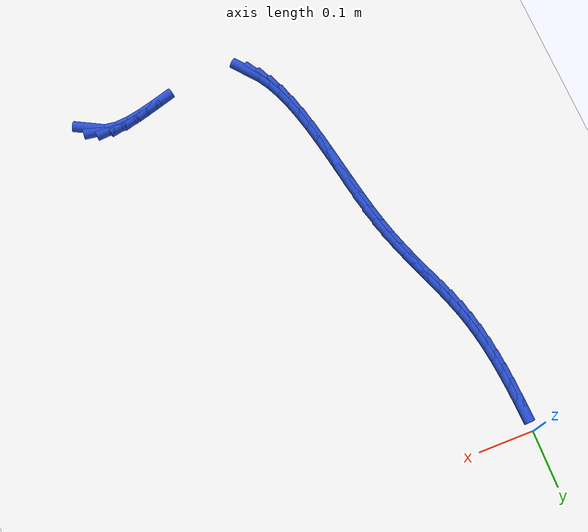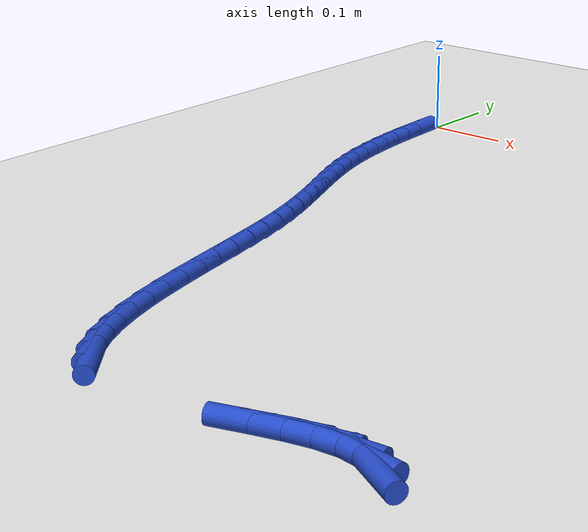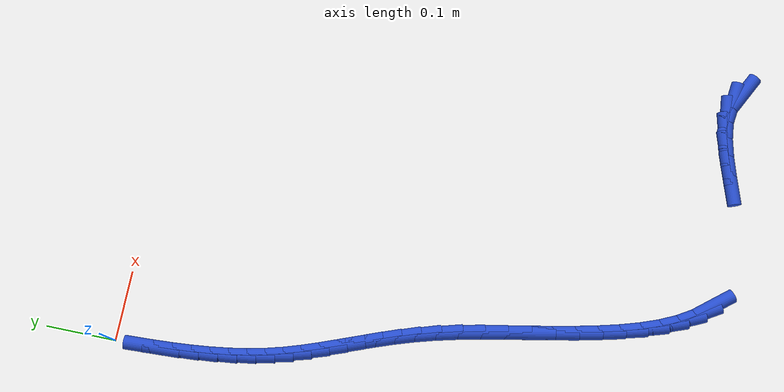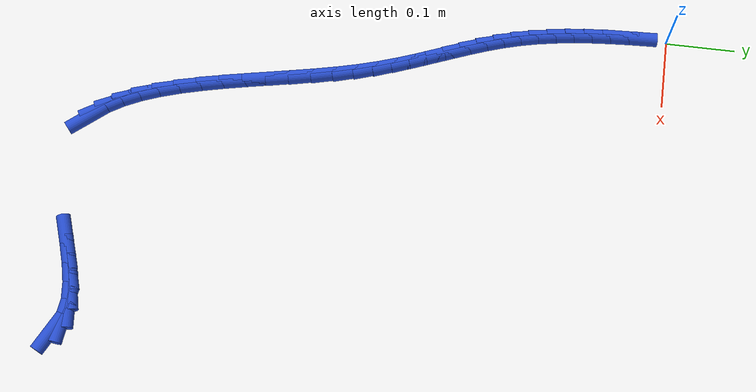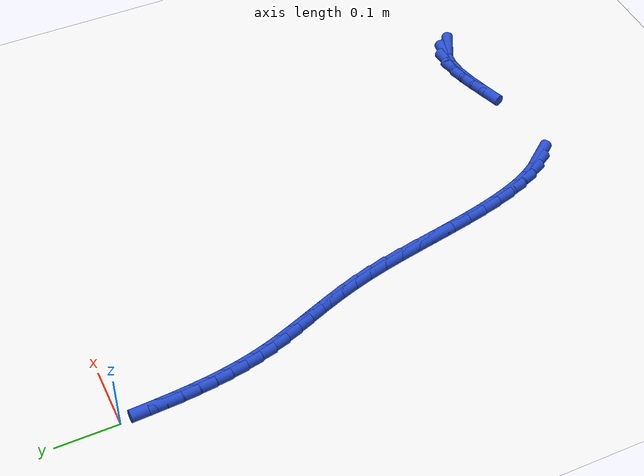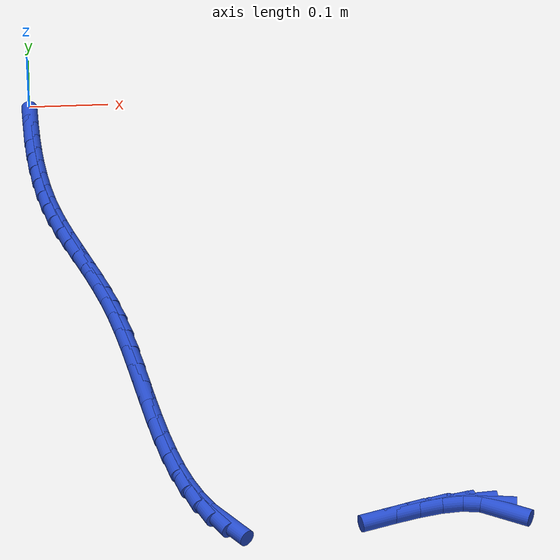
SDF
<sdf version="1.6">
 <world name="default">
  <model name="ground_plane">
   <static>1</static>
   <link name="link">
    <collision name="collision">
     <geometry><plane><normal>0 0 1</normal><size>100 100</size></plane></geometry>
     <surface><friction><ode><mu>100</mu><mu2>50</mu2></ode></friction></surface>
    </collision>
    <visual name="visual">
     <cast_shadows>0</cast_shadows>
     <geometry><plane><normal>0 0 1</normal><size>100 100</size></plane></geometry>
     <material>
      <script><uri>file://media/materials/scripts/gazebo.material</uri><name>Gazebo/WhiteGlow</name></script>
     </material>
    </visual>
   </link>
  </model>
  <model name="line">
   <link name="link_237">
    <pose>0.5253704313571097 -0.8052523698763567 0.01 0 1.57 -0.4733244016563563</pose>
    <collision name="collision">
     <geometry><cylinder><radius>0.01</radius><length>0.08</length></cylinder></geometry>
    </collision>
    <visual name="visual">
     <material>
      <script><name>Gazebo/Blue</name><uri>file://media/materials/scripts/gazebo.material</uri></script>
     </material>
     <geometry><cylinder><radius>0.01</radius><length>0.08</length></cylinder></geometry>
    </visual>
   </link>
   <link name="link_238">
    <pose>0.5075063873652312 -0.7961032071777651 0.01 0 1.57 -0.12200144855801087</pose>
    <collision name="collision">
     <geometry><cylinder><radius>0.01</radius><length>0.08</length></cylinder></geometry>
    </collision>
    <visual name="visual">
     <material>
      <script><name>Gazebo/Blue</name><uri>file://media/materials/scripts/gazebo.material</uri></script>
     </material>
     <geometry><cylinder><radius>0.01</radius><length>0.08</length></cylinder></geometry>
    </visual>
   </link>
   <link name="link_239">
    <pose>0.4858783791682675 -0.7934513889075395 0.01 0 1.57 0.10158526543611136</pose>
    <collision name="collision">
     <geometry><cylinder><radius>0.01</radius><length>0.08</length></cylinder></geometry>
    </collision>
    <visual name="visual">
     <material>
      <script><name>Gazebo/Blue</name><uri>file://media/materials/scripts/gazebo.material</uri></script>
     </material>
     <geometry><cylinder><radius>0.01</radius><length>0.08</length></cylinder></geometry>
    </visual>
   </link>
   <link name="link_240">
    <pose>0.4612313043117166 -0.7959638168895514 0.01 0 1.57 0.22929434041300942</pose>
    <collision name="collision">
     <geometry><cylinder><radius>0.01</radius><length>0.08</length></cylinder></geometry>
    </collision>
    <visual name="visual">
     <material>
      <script><name>Gazebo/Blue</name><uri>file://media/materials/scripts/gazebo.material</uri></script>
     </material>
     <geometry><cylinder><radius>0.01</radius><length>0.08</length></cylinder></geometry>
    </visual>
   </link>
   <link name="link_241">
    <pose>0.4343492990113083 -0.8022380537852797 0.01 0 1.57 0.2957826454013038</pose>
    <collision name="collision">
     <geometry><cylinder><radius>0.01</radius><length>0.08</length></cylinder></geometry>
    </collision>
    <visual name="visual">
     <material>
      <script><name>Gazebo/Blue</name><uri>file://media/materials/scripts/gazebo.material</uri></script>
     </material>
     <geometry><cylinder><radius>0.01</radius><length>0.08</length></cylinder></geometry>
    </visual>
   </link>
   <link name="link_242">
    <pose>0.4060164994827714 -0.8108716622562022 0.01 0 1.57 0.31939180551901974</pose>
    <collision name="collision">
     <geometry><cylinder><radius>0.01</radius><length>0.08</length></cylinder></geometry>
    </collision>
    <visual name="visual">
     <material>
      <script><name>Gazebo/Blue</name><uri>file://media/materials/scripts/gazebo.material</uri></script>
     </material>
     <geometry><cylinder><radius>0.01</radius><length>0.08</length></cylinder></geometry>
    </visual>
   </link>
   <link name="link_250">
    <pose>0.21339172882601581 -0.8107893501350365 0.01 0 1.57 -0.8856817626934499</pose>
    <collision name="collision">
     <geometry><cylinder><radius>0.01</radius><length>0.08</length></cylinder></geometry>
    </collision>
    <visual name="visual">
     <material>
      <script><name>Gazebo/Blue</name><uri>file://media/materials/scripts/gazebo.material</uri></script>
     </material>
     <geometry><cylinder><radius>0.01</radius><length>0.08</length></cylinder></geometry>
    </visual>
   </link>
   <link name="link_251">
    <pose>0.1988039996716353 -0.7929375152419706 0.01 0 1.57 -1.0263112141799966</pose>
    <collision name="collision">
     <geometry><cylinder><radius>0.01</radius><length>0.08</length></cylinder></geometry>
    </collision>
    <visual name="visual">
     <material>
      <script><name>Gazebo/Blue</name><uri>file://media/materials/scripts/gazebo.material</uri></script>
     </material>
     <geometry><cylinder><radius>0.01</radius><length>0.08</length></cylinder></geometry>
    </visual>
   </link>
   <link name="link_252">
    <pose>0.18599557801978084 -0.771785547146992 0.01 0 1.57 -1.133225022540049</pose>
    <collision name="collision">
     <geometry><cylinder><radius>0.01</radius><length>0.08</length></cylinder></geometry>
    </collision>
    <visual name="visual">
     <material>
      <script><name>Gazebo/Blue</name><uri>file://media/materials/scripts/gazebo.material</uri></script>
     </material>
     <geometry><cylinder><radius>0.01</radius><length>0.08</length></cylinder></geometry>
    </visual>
   </link>
   <link name="link_253">
    <pose>0.1747497406295842 -0.7477465767239643 0.01 0 1.57 -1.2134264452875978</pose>
    <collision name="collision">
     <geometry><cylinder><radius>0.01</radius><length>0.08</length></cylinder></geometry>
    </collision>
    <visual name="visual">
     <material>
      <script><name>Gazebo/Blue</name><uri>file://media/materials/scripts/gazebo.material</uri></script>
     </material>
     <geometry><cylinder><radius>0.01</radius><length>0.08</length></cylinder></geometry>
    </visual>
   </link>
   <link name="link_254">
    <pose>0.1648497642601763 -0.7212337348467498 0.01 0 1.57 -1.2729699690640437</pose>
    <collision name="collision">
     <geometry><cylinder><radius>0.01</radius><length>0.08</length></cylinder></geometry>
    </collision>
    <visual name="visual">
     <material>
      <script><name>Gazebo/Blue</name><uri>file://media/materials/scripts/gazebo.material</uri></script>
     </material>
     <geometry><cylinder><radius>0.01</radius><length>0.08</length></cylinder></geometry>
    </visual>
   </link>
   <link name="link_255">
    <pose>0.15607892567068823 -0.6926601523892114 0.01 0 1.57 -1.3163999370687305</pose>
    <collision name="collision">
     <geometry><cylinder><radius>0.01</radius><length>0.08</length></cylinder></geometry>
    </collision>
    <visual name="visual">
     <material>
      <script><name>Gazebo/Blue</name><uri>file://media/materials/scripts/gazebo.material</uri></script>
     </material>
     <geometry><cylinder><radius>0.01</radius><length>0.08</length></cylinder></geometry>
    </visual>
   </link>
   <link name="link_256">
    <pose>0.1482205016202513 -0.6624389602252118 0.01 0 1.57 -1.3469051205184628</pose>
    <collision name="collision">
     <geometry><cylinder><radius>0.01</radius><length>0.08</length></cylinder></geometry>
    </collision>
    <visual name="visual">
     <material>
      <script><name>Gazebo/Blue</name><uri>file://media/materials/scripts/gazebo.material</uri></script>
     </material>
     <geometry><cylinder><radius>0.01</radius><length>0.08</length></cylinder></geometry>
    </visual>
   </link>
   <link name="link_257">
    <pose>0.14105776886799662 -0.6309832892286139 0.01 0 1.57 -1.3666072005628747</pose>
    <collision name="collision">
     <geometry><cylinder><radius>0.01</radius><length>0.08</length></cylinder></geometry>
    </collision>
    <visual name="visual">
     <material>
      <script><name>Gazebo/Blue</name><uri>file://media/materials/scripts/gazebo.material</uri></script>
     </material>
     <geometry><cylinder><radius>0.01</radius><length>0.08</length></cylinder></geometry>
    </visual>
   </link>
   <link name="link_258">
    <pose>0.13437400417305528 -0.5987062702732803 0.01 0 1.57 -1.3768016632800888</pose>
    <collision name="collision">
     <geometry><cylinder><radius>0.01</radius><length>0.08</length></cylinder></geometry>
    </collision>
    <visual name="visual">
     <material>
      <script><name>Gazebo/Blue</name><uri>file://media/materials/scripts/gazebo.material</uri></script>
     </material>
     <geometry><cylinder><radius>0.01</radius><length>0.08</length></cylinder></geometry>
    </visual>
   </link>
   <link name="link_259">
    <pose>0.12795248429455858 -0.5660210342330737 0.01 0 1.57 -1.378114726639239</pose>
    <collision name="collision">
     <geometry><cylinder><radius>0.01</radius><length>0.08</length></cylinder></geometry>
    </collision>
    <visual name="visual">
     <material>
      <script><name>Gazebo/Blue</name><uri>file://media/materials/scripts/gazebo.material</uri></script>
     </material>
     <geometry><cylinder><radius>0.01</radius><length>0.08</length></cylinder></geometry>
    </visual>
   </link>
   <link name="link_260">
    <pose>0.12157648599163763 -0.5333407119818567 0.01 0 1.57 -1.370578623610257</pose>
    <collision name="collision">
     <geometry><cylinder><radius>0.01</radius><length>0.08</length></cylinder></geometry>
    </collision>
    <visual name="visual">
     <material>
      <script><name>Gazebo/Blue</name><uri>file://media/materials/scripts/gazebo.material</uri></script>
     </material>
     <geometry><cylinder><radius>0.01</radius><length>0.08</length></cylinder></geometry>
    </visual>
   </link>
   <link name="link_261">
    <pose>0.11502928602342347 -0.5010784343934914 0.01 0 1.57 -1.3536305979219894</pose>
    <collision name="collision">
     <geometry><cylinder><radius>0.01</radius><length>0.08</length></cylinder></geometry>
    </collision>
    <visual name="visual">
     <material>
      <script><name>Gazebo/Blue</name><uri>file://media/materials/scripts/gazebo.material</uri></script>
     </material>
     <geometry><cylinder><radius>0.01</radius><length>0.08</length></cylinder></geometry>
    </visual>
   </link>
   <link name="link_262">
    <pose>0.10809416114904763 -0.46964733234184247 0.01 0 1.57 -1.3260336135663504</pose>
    <collision name="collision">
     <geometry><cylinder><radius>0.01</radius><length>0.08</length></cylinder></geometry>
    </collision>
    <visual name="visual">
     <material>
      <script><name>Gazebo/Blue</name><uri>file://media/materials/scripts/gazebo.material</uri></script>
     </material>
     <geometry><cylinder><radius>0.01</radius><length>0.08</length></cylinder></geometry>
    </visual>
   </link>
   <link name="link_263">
    <pose>0.10055438812764114 -0.4394605367007716 0.01 0 1.57 -1.2876088584617453</pose>
    <collision name="collision">
     <geometry><cylinder><radius>0.01</radius><length>0.08</length></cylinder></geometry>
    </collision>
    <visual name="visual">
     <material>
      <script><name>Gazebo/Blue</name><uri>file://media/materials/scripts/gazebo.material</uri></script>
     </material>
     <geometry><cylinder><radius>0.01</radius><length>0.08</length></cylinder></geometry>
    </visual>
   </link>
   <link name="link_264">
    <pose>0.09223417589619615 -0.4108695807154356 0.01 0 1.57 -1.2505578603579126</pose>
    <collision name="collision">
     <geometry><cylinder><radius>0.01</radius><length>0.08</length></cylinder></geometry>
    </collision>
    <visual name="visual">
     <material>
      <script><name>Gazebo/Blue</name><uri>file://media/materials/scripts/gazebo.material</uri></script>
     </material>
     <geometry><cylinder><radius>0.01</radius><length>0.08</length></cylinder></geometry>
    </visual>
   </link>
   <link name="link_265">
    <pose>0.08325123648674697 -0.38378431346911 0.01 0 1.57 -1.2221857667776883</pose>
    <collision name="collision">
     <geometry><cylinder><radius>0.01</radius><length>0.08</length></cylinder></geometry>
    </collision>
    <visual name="visual">
     <material>
      <script><name>Gazebo/Blue</name><uri>file://media/materials/scripts/gazebo.material</uri></script>
     </material>
     <geometry><cylinder><radius>0.01</radius><length>0.08</length></cylinder></geometry>
    </visual>
   </link>
   <link name="link_266">
    <pose>0.07385138566441715 -0.3579218045107519 0.01 0 1.57 -1.204165877244008</pose>
    <collision name="collision">
     <geometry><cylinder><radius>0.01</radius><length>0.08</length></cylinder></geometry>
    </collision>
    <visual name="visual">
     <material>
      <script><name>Gazebo/Blue</name><uri>file://media/materials/scripts/gazebo.material</uri></script>
     </material>
     <geometry><cylinder><radius>0.01</radius><length>0.08</length></cylinder></geometry>
    </visual>
   </link>
   <link name="link_267">
    <pose>0.06428097319241216 -0.332998319791335 0.01 0 1.57 -1.19786669908006</pose>
    <collision name="collision">
     <geometry><cylinder><radius>0.01</radius><length>0.08</length></cylinder></geometry>
    </collision>
    <visual name="visual">
     <material>
      <script><name>Gazebo/Blue</name><uri>file://media/materials/scripts/gazebo.material</uri></script>
     </material>
     <geometry><cylinder><radius>0.01</radius><length>0.08</length></cylinder></geometry>
    </visual>
   </link>
   <link name="link_268">
    <pose>0.05478634883393752 -0.3087301252618331 0.01 0 1.57 -1.2042981030430169</pose>
    <collision name="collision">
     <geometry><cylinder><radius>0.01</radius><length>0.08</length></cylinder></geometry>
    </collision>
    <visual name="visual">
     <material>
      <script><name>Gazebo/Blue</name><uri>file://media/materials/scripts/gazebo.material</uri></script>
     </material>
     <geometry><cylinder><radius>0.01</radius><length>0.08</length></cylinder></geometry>
    </visual>
   </link>
   <link name="link_269">
    <pose>0.04561386235219865 -0.28483348687321974 0.01 0 1.57 -1.224020771244203</pose>
    <collision name="collision">
     <geometry><cylinder><radius>0.01</radius><length>0.08</length></cylinder></geometry>
    </collision>
    <visual name="visual">
     <material>
      <script><name>Gazebo/Blue</name><uri>file://media/materials/scripts/gazebo.material</uri></script>
     </material>
     <geometry><cylinder><radius>0.01</radius><length>0.08</length></cylinder></geometry>
    </visual>
   </link>
   <link name="link_270">
    <pose>0.0370098635104008 -0.2610246705764681 0.01 0 1.57 -1.2570307808547956</pose>
    <collision name="collision">
     <geometry><cylinder><radius>0.01</radius><length>0.08</length></cylinder></geometry>
    </collision>
    <visual name="visual">
     <material>
      <script><name>Gazebo/Blue</name><uri>file://media/materials/scripts/gazebo.material</uri></script>
     </material>
     <geometry><cylinder><radius>0.01</radius><length>0.08</length></cylinder></geometry>
    </visual>
   </link>
   <link name="link_271">
    <pose>0.029220702071749982 -0.23701994232255333 0.01 0 1.57 -1.3024337707651124</pose>
    <collision name="collision">
     <geometry><cylinder><radius>0.01</radius><length>0.08</length></cylinder></geometry>
    </collision>
    <visual name="visual">
     <material>
      <script><name>Gazebo/Blue</name><uri>file://media/materials/scripts/gazebo.material</uri></script>
     </material>
     <geometry><cylinder><radius>0.01</radius><length>0.08</length></cylinder></geometry>
    </visual>
   </link>
   <link name="link_272">
    <pose>0.022488659537630677 -0.21253943769111308 0.01 0 1.57 -1.351711452618837</pose>
    <collision name="collision">
     <geometry><cylinder><radius>0.01</radius><length>0.08</length></cylinder></geometry>
    </collision>
    <visual name="visual">
     <material>
      <script><name>Gazebo/Blue</name><uri>file://media/materials/scripts/gazebo.material</uri></script>
     </material>
     <geometry><cylinder><radius>0.01</radius><length>0.08</length></cylinder></geometry>
    </visual>
   </link>
   <link name="link_273">
    <pose>0.016902190115173868 -0.18744960892809134 0.01 0 1.57 -1.3952084578943387</pose>
    <collision name="collision">
     <geometry><cylinder><radius>0.01</radius><length>0.08</length></cylinder></geometry>
    </collision>
    <visual name="visual">
     <material>
      <script><name>Gazebo/Blue</name><uri>file://media/materials/scripts/gazebo.material</uri></script>
     </material>
     <geometry><cylinder><radius>0.01</radius><length>0.08</length></cylinder></geometry>
    </visual>
   </link>
   <link name="link_274">
    <pose>0.012352388381107408 -0.16180463181265778 0.01 0 1.57 -1.4325908845862445</pose>
    <collision name="collision">
     <geometry><cylinder><radius>0.01</radius><length>0.08</length></cylinder></geometry>
    </collision>
    <visual name="visual">
     <material>
      <script><name>Gazebo/Blue</name><uri>file://media/materials/scripts/gazebo.material</uri></script>
     </material>
     <geometry><cylinder><radius>0.01</radius><length>0.08</length></cylinder></geometry>
    </visual>
   </link>
   <link name="link_275">
    <pose>0.008717404345557967 -0.13567099467125146 0.01 0 1.57 -1.4641816097849503</pose>
    <collision name="collision">
     <geometry><cylinder><radius>0.01</radius><length>0.08</length></cylinder></geometry>
    </collision>
    <visual name="visual">
     <material>
      <script><name>Gazebo/Blue</name><uri>file://media/materials/scripts/gazebo.material</uri></script>
     </material>
     <geometry><cylinder><radius>0.01</radius><length>0.08</length></cylinder></geometry>
    </visual>
   </link>
   <link name="link_276">
    <pose>0.005875388018652238 -0.10911518583031163 0.01 0 1.57 -1.4903025375220205</pose>
    <collision name="collision">
     <geometry><cylinder><radius>0.01</radius><length>0.08</length></cylinder></geometry>
    </collision>
    <visual name="visual">
     <material>
      <script><name>Gazebo/Blue</name><uri>file://media/materials/scripts/gazebo.material</uri></script>
     </material>
     <geometry><cylinder><radius>0.01</radius><length>0.08</length></cylinder></geometry>
    </visual>
   </link>
   <link name="link_277">
    <pose>0.003704489410516896 -0.08220369361627745 0.01 0 1.57 -1.5112495315379846</pose>
    <collision name="collision">
     <geometry><cylinder><radius>0.01</radius><length>0.08</length></cylinder></geometry>
    </collision>
    <visual name="visual">
     <material>
      <script><name>Gazebo/Blue</name><uri>file://media/materials/scripts/gazebo.material</uri></script>
     </material>
     <geometry><cylinder><radius>0.01</radius><length>0.08</length></cylinder></geometry>
    </visual>
   </link>
   <link name="link_278">
    <pose>0.002082858531278626 -0.055003006355588135 0.01 0 1.57 -1.5272765818672658</pose>
    <collision name="collision">
     <geometry><cylinder><radius>0.01</radius><length>0.08</length></cylinder></geometry>
    </collision>
    <visual name="visual">
     <material>
      <script><name>Gazebo/Blue</name><uri>file://media/materials/scripts/gazebo.material</uri></script>
     </material>
     <geometry><cylinder><radius>0.01</radius><length>0.08</length></cylinder></geometry>
    </visual>
   </link>
  </model>
 </world>
</sdf>
